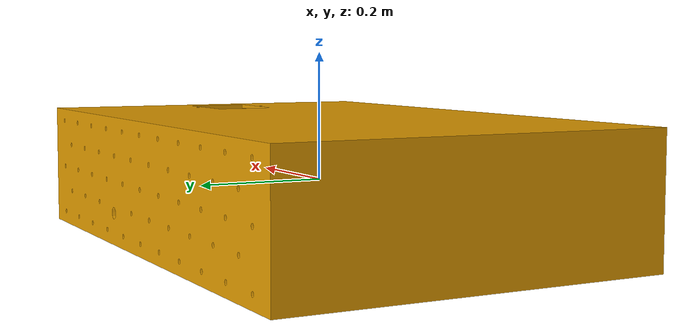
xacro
<?xml version='1.0'?>

<robot name="rover" xmlns:xacro="http://www.ros.org/wiki/xacro">

  <xacro:include filename="$(find simulation)/robot/rover.gazebo" />
  <link name='chassis'>
    <pose>0 0 0.1 0 0 0</pose>

    <collision name='collision'>
      <origin rpy="0 0 0" xyz="0 0 0"/>
      <geometry>
        <box size="0.9 0.58 0.2"/>
      </geometry>
      <surface>
        <friction>
          <ode>
            <mu>0</mu>
            <mu2>0</mu2>
            <slip1>1.0</slip1>
            <slip2>1.0</slip2>
          </ode>
        </friction>
      </surface>
    </collision>

    <visual name='chassis_visual'>
      <origin rpy="0 0 0" xyz="0 0 0"/>
      <geometry>
        <mesh filename="package://simulation/robot/chassis_only.dae"/>
      </geometry>
    </visual>
    <inertial>
      <mass value="20.0"/>
      <origin xyz="0 0 0" rpy=" 0 0 0"/>
      <inertia
          ixx="0.627" ixy="0" ixz="0"
          iyy="1.72" iyz="0"
          izz="1.91"
      />
    </inertial>
  </link>
</robot>
